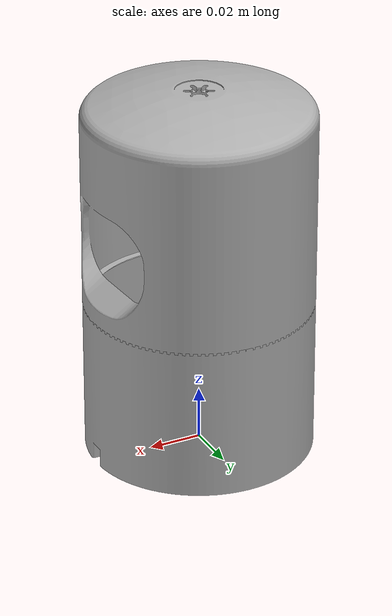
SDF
<?xml version="1.0"?>
<sdf version="1.5">

    <model name="velodyne_hdl-32">

        <!-- Attach the plugin to this model -->
        <plugin name="velodyne_control" filename="libvelodyne_plugin.so"></plugin>

        <link name="base">

            <pose>0 0 0.029335 0 0 0</pose>

            <inertial>
                <mass>1.2</mass>
                <inertia>
                    <ixx>0.001087473</ixx>
                    <iyy>0.001087473</iyy>
                    <izz>0.001092437</izz>
                    <ixy>0</ixy>
                    <ixz>0</ixz>
                    <iyz>0</iyz>
                </inertia>
            </inertial>

            <collision name="base_collision">
                <geometry>
                    <cylinder>
                        <radius>0.04267</radius>
                        <length>0.05867</length>
                    </cylinder>
                </geometry>
            </collision>

            <visual name="base_visual">
                <!-- Adjust pose of visual element of LiDAR base in order to match it to its top -->
                <pose>0 0 -0.029335 0 0 0</pose>
                <geometry>
                    <!-- Use cylinder shape for simple 3D modeling design of Velodyne LiDAR base -->

                    <!-- Use mesh for complex 3D modeling design of Velodyne LiDAR base -->
                    <mesh><!-- Mesh tag indicates that we will use 3D mesh for visualization -->
                        <uri>model://models/velodyne_hdl-32/meshes/velodyne_base_corrected.dae</uri>
                        <!-- URI should refer to 3D mesh. 'model://' URI scheme indicates that we are referencing Gazebo model. -->
                        <!-- Use corrected COLLADA design mesh for correct positioning and scale -->
                    </mesh>
                </geometry>
            </visual>

        </link>

        <link name="top">

            <pose>0 0 0.095455 0 0 0</pose>

            <inertial>
                <mass>0.1</mass>
                <inertia>
                    <ixx>0.000090623</ixx>
                    <iyy>0.000090623</iyy>
                    <izz>0.000091036</izz>
                    <ixy>0</ixy>
                    <ixz>0</ixz>
                    <iyz>0</iyz>
                </inertia>
            </inertial>

            <collision name="top_collision">
                <geometry>
                    <cylinder>
                        <radius>0.04267</radius>
                        <length>0.07357</length>
                    </cylinder>
                </geometry>
            </collision>

            <visual name="top_visual">
                <!-- Adjust pose of visual element of LiDAR top in order to match it to its base -->
                <pose>0 0 -0.0376785 0 0 1.5707</pose>
                <geometry>
                    <!-- Use cylinder shape for simple 3D modeling design of Velodyne LiDAR base -->

                    <!-- Use mesh for complex 3D modeling design of Velodyne LiDAR base -->
                    <mesh><!-- Mesh tag indicates that we will use 3D mesh for visualization -->
                        <uri>model://models/velodyne_hdl-32/meshes/velodyne_top_corrected.dae</uri>
                        <!-- URI should refer to 3D mesh. 'model://' URI scheme indicates that we are referencing Gazebo model. -->
                        <!-- Use corrected COLLADA design mesh for correct positioning and scale -->
                    </mesh>
                </geometry>
            </visual>

            <!-- Assign sensor properties to top link -->
            <sensor type="ray" name="sensor">

                <pose>0 0 -0.004645 1.5707 0 0</pose>

                <!-- Enable visualization to see the rays in the GUI -->
                <visualize>true</visualize>

                <!-- Set the update rate of the sensor -->
                <update_rate>30</update_rate>

                <!-- Assign 'ray' properties that define the characteristics of beams -->
                <ray>

                    <!-- 'scan' element contains the horizontal and vertical beams. -->
                    <scan>
                        <!-- Horizontal beams -->
                        <horizontal>
                            <!-- Velodyne_HDL-32 has 32 beams (samples) -->
                            <samples>32</samples>

                            <resolution>1</resolution>

                            <!-- Minimum angle in radians -->
                            <min_angle>-0.53529248</min_angle>

                            <!-- Maximum angle in radians -->
                            <max_angle>0.18622663</max_angle>

                        </horizontal>
                    </scan>

                    <!-- 'range' element defines the characteristics of an individual beam -->
                    <range>

                        <!-- Minimum distance of the beam -->
                        <min>0.05</min>

                        <!-- Maximum distance of the beam -->
                        <max>70</max>

                        <!-- Linear resolution of the beam -->
                        <resolution>0.02</resolution>

                    </range>

                    <!-- Apply gaussian noise model for more realistic 3D modeling by using 'noise' element -->
                    <noise>
                        <!-- Gaussian Noise -->
                        <type>gaussian</type>
                        <mean>0.0</mean>
                        <stddev>0.02</stddev>
                    </noise>

                </ray>

            </sensor>

        </link>

        <!-- Revolute joint : Single rotational degree of freedom between two links -->
        <joint type="revolute" name="joint">

            <!-- Position of Joint is defined based on the coordinate of parent of the joint-->
            <!-- Position the joint at the bottom of the top link -->
            <pose>0 0 -0.036785 0 0 0</pose>

            <!--
                 Since top link spins relateive to base link, base link will be parent and top link will be child.
                 Revolute joint will connect those two links.
            -->
            <!-- Use the base link as the parent of the joint -->
            <parent>base</parent>

            <!-- Use top link as the child of the joint -->
            <child>top</child>

            <!-- Axis defines the joint's degree of freedom -->
            <axis>

                <!-- Revolve aroung the z-axis -->
                <xyz>0 0 1</xyz>

                <!-- Limit refers to the range of motion of the joint -->
                <limit>
                    <lower>-10000000000000000</lower>
                    <upper> 10000000000000000</upper>
                </limit>

            </axis>

        </joint>

    </model>

</sdf>
